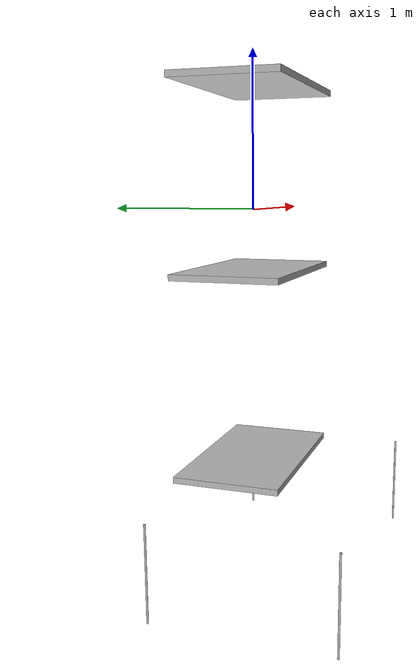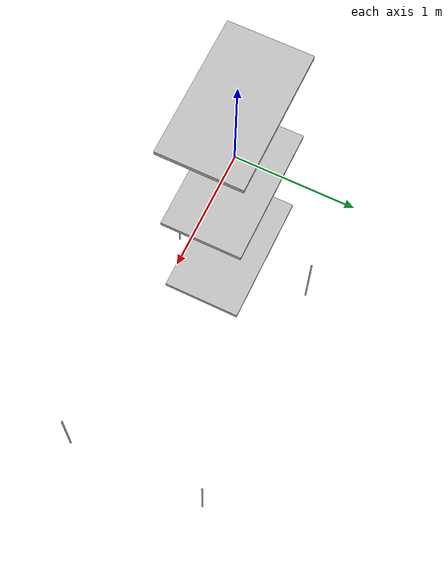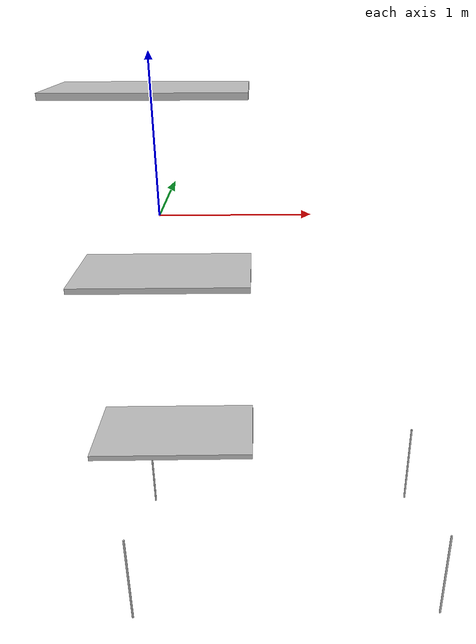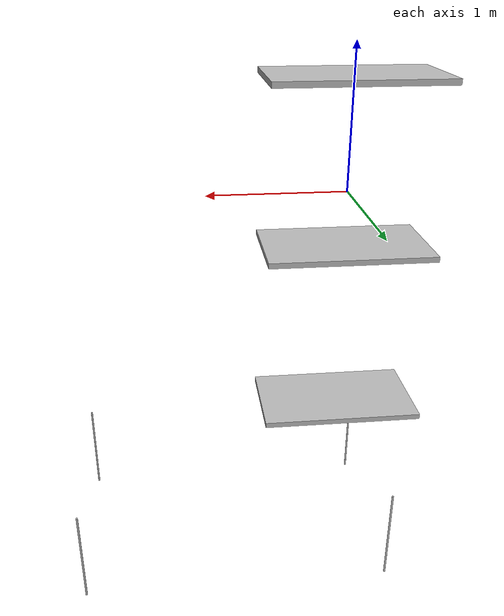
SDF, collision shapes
<?xml version="1.0" ?>
<sdf version="1.5">
 <model name="Wire_Shelf">
<static>1</static>
    <link name="lvl_1">
	<pose>0 -0.015 0.78 0 0 0</pose>
	<inertial>
	  <mass>1.5306</mass>
	   <inertia>
	     <ixx>0.0162</ixx>
	     <iyy>0.0475</iyy>
	     <izz>0.0635</izz>
    	     <ixy>0</ixy>
	     <ixz>0</ixz>
	     <iyz>0</iyz>
	   </inertia>
	</inertial>
	<collision name="body">
	  <geometry>
	    <box>
	      <size> 1.2 0.7 0.04 </size>
	    </box>
	  </geometry>
	</collision>
	<visual name="bodyMesh">
	<pose>-0.32 0.005 -0.65  0 0  -1.58</pose>
	  <geometry>
	  <mesh>
	    <uri>model://Wire_Shelf/meshes/level.dae</uri>
		<scale> 3.2 2.6 3.2 </scale>
	  </mesh>
	  </geometry>
	</visual>
      </link>
 <joint type="fixed" name="1_1">
      <pose frame=''>-0.3048 0.1778 0 0 0 0</pose>
         <parent>leg_1</parent>
  	 <child>lvl_1</child>
	 <axis>
	   <xyz>1 0 0</xyz>
	 </axis>
       </joint>

   <joint type="fixed" name="1_2">
      <pose frame=''>0.3048 0.1778 0 0 0 0</pose>
         <parent>leg_2</parent>
  	 <child>lvl_1</child>
	 <axis>
	   <xyz>1 0 0</xyz>
	 </axis>
       </joint>

   <joint type="fixed" name="1_3">
      <pose frame=''>0.3048 -0.1778 0 0 0 0</pose>
         <parent>leg_3</parent>
  	 <child>lvl_1</child>
	 <axis>
	   <xyz>1 0 0</xyz>
	 </axis>
       </joint>

  <joint type="fixed" name="1_4">
      <pose frame=''>-0.3048 -0.1778 0 0 0 0</pose>
         <parent>leg_4</parent>
  	 <child>lvl_1</child>
	 <axis>
	   <xyz>1 0 0</xyz>
	 </axis>
       </joint>

  <link name="lvl_2">
	<pose> 0 -0.005 -0.4 0 0 0</pose>
	<inertial>
	  <mass>1.5306</mass>
	   <inertia>
	     <ixx>0.0162</ixx>
	     <iyy>0.0475</iyy>
	     <izz>0.0635</izz>
    	     <ixy>0</ixy>
	     <ixz>0</ixz>
	     <iyz>0</iyz>
	   </inertia>
	</inertial>
	<collision name="body">
	  <geometry>
	    <box>
	      <size> 1.2 0.7 0.04 </size>
	    </box>
	  </geometry>
	</collision>
	<visual name="bodyMesh">
	<pose>-0.32 -0.005 -0.65  0 0  -1.58</pose>
	  <geometry>
	  <mesh>
	    <uri>model://Wire_Shelf/meshes/level.dae</uri>
		<scale> 3.2 2.6 3.2 </scale>
	  </mesh>
	  </geometry>
	</visual>
      </link>

   <joint type="fixed" name="2_1">
      <pose frame=''>-0.3048 0.1778 0 0 0 0</pose>
         <parent>leg_1</parent>
  	 <child>lvl_2</child>
	 <axis>
	   <xyz>1 0 0</xyz>
	 </axis>
       </joint>

   <joint type="fixed" name="2_2">
      <pose frame=''>0.3048 0.1778 0 0 0 0</pose>
         <parent>leg_2</parent>
  	 <child>lvl_2</child>
	 <axis>
	   <xyz>1 0 0</xyz>
	 </axis>
       </joint>

   <joint type="fixed" name="2_3">
      <pose frame=''>0.3048 -0.1778 0 0 0 0</pose>
         <parent>leg_3</parent>
  	 <child>lvl_2</child>
	 <axis>
	   <xyz>1 0 0</xyz>
	 </axis>
       </joint>

  <joint type="fixed" name="2_4">
      <pose frame=''>-0.3048 -0.1778 0 0 0 0</pose>
         <parent>leg_4</parent>
  	 <child>lvl_2</child>
	 <axis>
	   <xyz>1 0 0</xyz>
	 </axis>
       </joint>

  <link name="lvl_3">
	<pose> 0 -0.005 -1.7 0 0 0</pose>
	<inertial>
	  <mass>1.5306</mass>
	   <inertia>
	     <ixx>0.0162</ixx>
	     <iyy>0.0475</iyy>
	     <izz>0.0635</izz>
    	     <ixy>0</ixy>
	     <ixz>0</ixz>
	     <iyz>0</iyz>
	   </inertia>
	</inertial>
	<collision name="body">
	  <geometry>
	    <box>
	      <size> 1.2 0.7 0.04 </size>
	    </box>
	  </geometry>
	</collision>
	<visual name="bodyMesh">
	<pose>-0.32 -0.005 -0.65  0 0  -1.58</pose>
	  <geometry>
	  <mesh>
	    <uri>model://Wire_Shelf/meshes/level.dae</uri>
		<scale> 3.2 2.6 3.2 </scale>
	  </mesh>
	  </geometry>
	</visual>
      </link>

 <joint type="fixed" name="3_1">
      <pose frame=''>-0.3048 0.1778 0 0 0 0</pose>
         <parent>leg_1</parent>
  	 <child>lvl_3</child>
	 <axis>
	   <xyz>1 0 0</xyz>
	 </axis>
       </joint>

   <joint type="fixed" name="3_2">
      <pose frame=''>0.3048 0.1778 0 0 0 0</pose>
         <parent>leg_2</parent>
  	 <child>lvl_3</child>
	 <axis>
	   <xyz>1 0 0</xyz>
	 </axis>
       </joint>

   <joint type="fixed" name="3_3">
      <pose frame=''>0.3048 -0.1778 0 0 0 0</pose>
         <parent>leg_3</parent>
  	 <child>lvl_3</child>
	 <axis>
	   <xyz>1 0 0</xyz>
	 </axis>
       </joint>

  <joint type="fixed" name="3_4">
      <pose frame=''>-0.3048 -0.1778 0 0 0 0</pose>
         <parent>leg_4</parent>
  	 <child>lvl_3</child>
	 <axis>
	   <xyz>1 0 0</xyz>
	 </axis>
       </joint>

 <link name="leg_1">
	<pose> -0.33 0.7 -2.55 0 0 0</pose>
	<inertial>
	  <mass>0.0483</mass>
	   <inertia>
	     <ixx>0.0023</ixx>
	     <iyy>0.0023</iyy>
	     <izz>0.0000014023</izz>
    	     <ixy>0</ixy>
	     <ixz>0</ixz>
	     <iyz>0</iyz>
	   </inertia>
	</inertial>
	<collision name="body">
	  <geometry>
	    <cylinder>
	      <radius> 0.007620 </radius>
	      <length> 0.762 </length>
	    </cylinder>
	  </geometry>
	</collision>
	<visual name="bodyMesh">
	<pose>-0.0122  0.01 -1.3655  0 0  -1.58</pose>
	  <geometry>
	  <mesh>
	    <uri>model://Wire_Shelf/meshes/leg.dae</uri>
		<scale> 3.2 3.2 3.8 </scale>
	  </mesh>
	  </geometry>
	</visual>
      </link>
  <link name="leg_2">
	<pose>2.03  0.7 -2.55 0 0 0</pose>
	<inertial>
	  <mass>0.0483</mass>
	   <inertia>
	     <ixx>0.0023</ixx>
	     <iyy>0.0023</iyy>
	     <izz>0.0000014023</izz>
    	     <ixy>0</ixy>
	     <ixz>0</ixz>
	     <iyz>0</iyz>
	   </inertia>
	</inertial>
	<collision name="body">
	 <geometry>
	    <cylinder>
	      <radius> 0.007620 </radius>
	      <length> 0.762 </length>
	    </cylinder>
	  </geometry>
	</collision>
	<visual name="bodyMesh">
	<pose>-0.0122  0.01 -1.3655  0 0  -1.58</pose>
	  <geometry>
	  <mesh>
	    <uri>model://Wire_Shelf/meshes/leg.dae</uri>
		<scale> 3.2 3.2 3.8 </scale>
	  </mesh>
	  </geometry>
	</visual>
      </link>

  <link name="leg_3">
	<pose> 2.03 -0.7 -2.55 0 0 0</pose>
	<inertial>
	  <mass>0.0483</mass>
	   <inertia>
	     <ixx>0.0023</ixx>
	     <iyy>0.0023</iyy>
	     <izz>0.0000014023</izz>
    	     <ixy>0</ixy>
	     <ixz>0</ixz>
	     <iyz>0</iyz>
	   </inertia>
	</inertial>
	<collision name="body">
	 <geometry>
	    <cylinder>
	      <radius> 0.007620 </radius>
	      <length> 0.762 </length>
	    </cylinder>
	  </geometry>
	</collision>
	<visual name="bodyMesh">
	<pose>-0.0122  0.005 -1.3655  0 0  -1.58</pose>
	  <geometry>
	  <mesh>
	    <uri>model://Wire_Shelf/meshes/leg.dae</uri>
		<scale> 3.2 3.2 3.8 </scale>
	  </mesh>
	  </geometry>
	</visual>
      </link>
  <link name="leg_4">

      <pose> -0.33 -0.7 -2.55 0 0 0</pose>
	<inertial>
	  <mass>0.0483</mass>
	   <inertia>
	     <ixx>0.0023</ixx>
	     <iyy>0.0023</iyy>
	     <izz>0.0000014023</izz>
    	     <ixy>0</ixy>
	     <ixz>0</ixz>
	     <iyz>0</iyz>
	   </inertia>
	</inertial>
	<collision name="body">
	  <geometry>
	    <cylinder>
	      <radius> 0.007620 </radius>
	      <length> 0.762 </length>
	    </cylinder>
	  </geometry>
	</collision>
	<visual name="bodyMesh">
	<pose>-0.0122  0.005 -1.3655  0 0  -1.58</pose>
	  <geometry>
	  <mesh>
	    <uri>model://Wire_Shelf/meshes/leg.dae</uri>
		<scale> 3.2 3.2 3.8 </scale>
	  </mesh>
	  </geometry>
	</visual>
      </link>
 </model>
</sdf>
